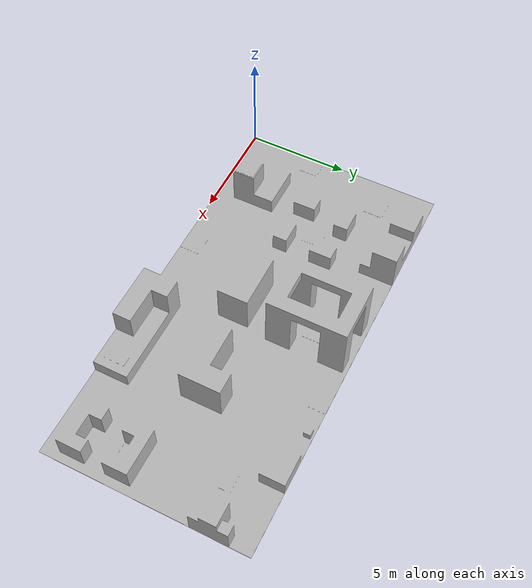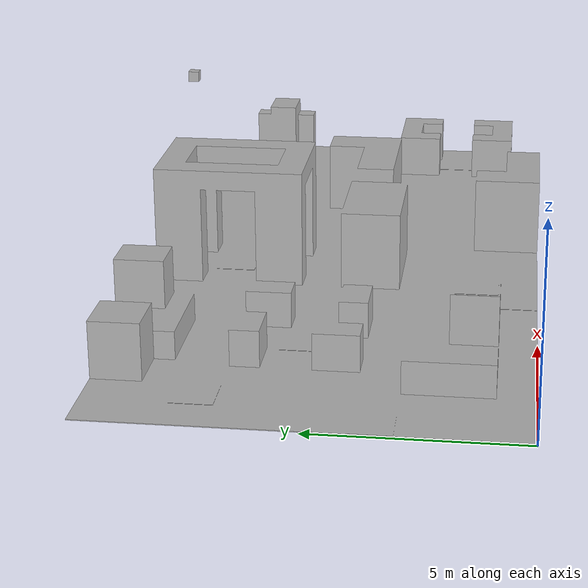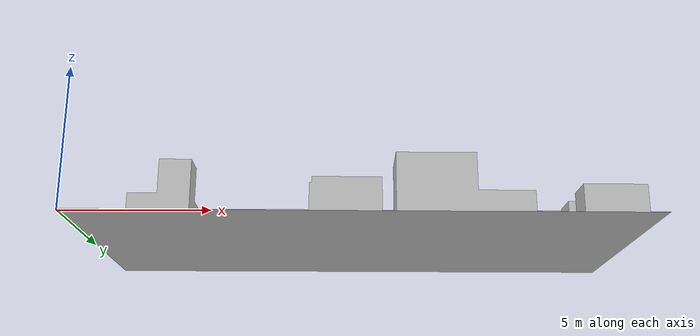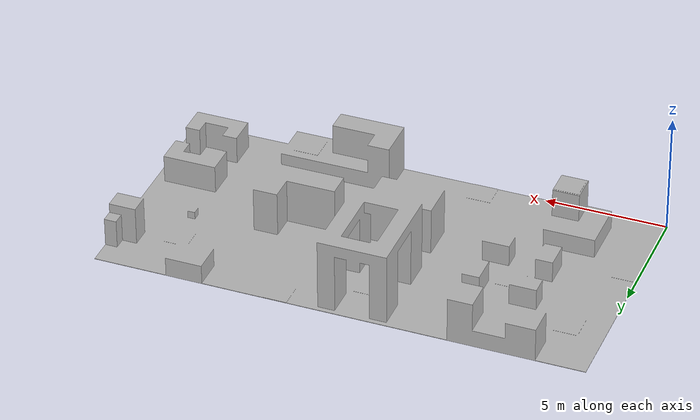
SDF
<?xml version="1.0" ?>
<sdf version="1.5">
	<model name="campo_gara">
		<static>true</static>
		<!-- Obstacles map -->
		<link name="ground">
			<pose>0 0 0.05 0 0 0</pose>
			<collision name="ground_collision">
				<geometry>
			  		<mesh>
						<uri>model://campo_gara/meshes/campo_gara.stl</uri>
			  		</mesh>
				</geometry>
			</collision>
			<visual name="ground_visual">
				<geometry>
			  		<mesh>
						<uri>model://campo_gara/meshes/campo_gara.stl</uri>
			  		</mesh>
				</geometry>
				<cast_shadows>false</cast_shadows>
			</visual>
		</link>

		<!-- Takeoff/landing pitches -->

  </model>
</sdf>
